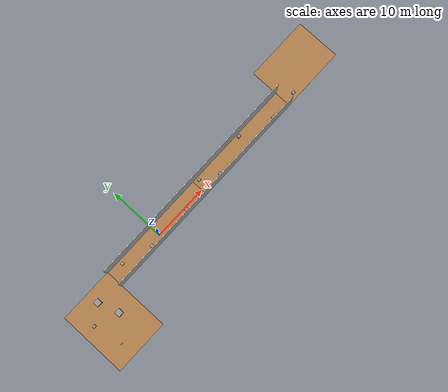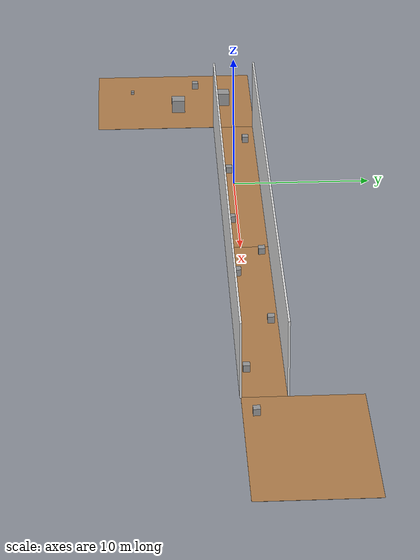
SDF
<sdf version="1.7">
 <world name="default">
  <light name="sun" type="directional">
   <pose>0 0 10 0 -0 0</pose>
   <diffuse>0.8 0.8 0.8 1</diffuse>
   <specular>0.2 0.2 0.2 1</specular>
   <attenuation>
    <range>1000</range>
    <constant>0.9</constant>
    <linear>0.01</linear>
    <quadratic>0.001</quadratic>
   </attenuation>
   <direction>-0.5 0.1 -0.9</direction>
   <spot><inner_angle>0</inner_angle><outer_angle>0</outer_angle><falloff>0</falloff></spot>
  </light>
  <gravity>0 0 -9.8</gravity>
  <magnetic_field>6e-06 2.3e-05 -4.2e-05</magnetic_field>
  <atmosphere type="adiabatic"/>
  <physics type="ode">
   <max_step_size>0.001</max_step_size>
   <real_time_factor>1</real_time_factor>
   <real_time_update_rate>1000</real_time_update_rate>
  </physics>
  <scene><ambient>0.4 0.4 0.4 1</ambient><background>0.7 0.7 0.7 1</background><shadows>1</shadows></scene>
  <audio><device>default</device></audio>
  <spherical_coordinates>
   <surface_model>EARTH_WGS84</surface_model>
   <latitude_deg>0</latitude_deg>
   <longitude_deg>0</longitude_deg>
   <elevation>0</elevation>
   <heading_deg>0</heading_deg>
  </spherical_coordinates>
  <model name="hallway_floor1">
   <link name="link">
    <pose>0 0.307034 0.005 0 -0 0</pose>
    <inertial>
     <mass>299.29</mass>
     <inertia><ixx>223.195</ixx><ixy>0</ixy><ixz>0</ixz><iyy>9986.2</iyy><iyz>0</iyz><izz>10209.4</izz></inertia>
    </inertial>
    <visual name="visual">
     <geometry><box><size>20.0099 2.99147 0.01</size></box></geometry>
     <material>
      <script><uri>file://media/materials/scripts/gazebo.material</uri><name>Gazebo/Wood</name></script>
      <shader type="pixel"><normal_map>__default__</normal_map></shader>
      <ambient>1 1 1 1</ambient>
      <diffuse>0.53 0.43 0.29 1</diffuse>
      <specular>0.2 0.2 0.2 1</specular>
      <emissive>0 0 0 1</emissive>
     </material>
    </visual>
    <collision name="collision">
     <geometry><box><size>20.0099 2.99147 0.01</size></box></geometry>
     <surface>
      <friction>
       <ode><mu>1</mu><mu2>1</mu2><fdir1>0 0 0</fdir1><slip1>0</slip1><slip2>0</slip2></ode>
       <torsional>
        <coefficient>1</coefficient>
        <patch_radius>0</patch_radius>
        <surface_radius>0.05</surface_radius>
        <use_patch_radius>0</use_patch_radius>
        <ode><slip>0</slip></ode>
       </torsional>
      </friction>
      <bounce><restitution_coefficient>0</restitution_coefficient><threshold>1e+06</threshold></bounce>
      <contact>
       <collide_without_contact>0</collide_without_contact>
       <collide_without_contact_bitmask>1</collide_without_contact_bitmask>
       <collide_bitmask>1</collide_bitmask>
       <ode>
        <soft_cfm>0</soft_cfm>
        <soft_erp>0.2</soft_erp>
        <kp>100000</kp>
        <kd>1</kd>
        <max_vel>1</max_vel>
        <min_depth>0.001</min_depth>
       </ode>
       <bullet>
        <split_impulse>1</split_impulse>
        <split_impulse_penetration_threshold>-0.01</split_impulse_penetration_threshold>
        <soft_cfm>0</soft_cfm>
        <soft_erp>0.2</soft_erp>
        <kp>100000</kp>
        <kd>1</kd>
       </bullet>
      </contact>
     </surface>
    </collision>
   </link>
   <static>1</static>
   <pose>-0.007919 0.198623 0 0 -0 0</pose>
  </model>
  <model name="hallway_floor2">
   <link name="link">
    <pose>2.60113 -4.27684 0.005 0 -0 0</pose>
    <inertial>
     <mass>597.527</mass>
     <inertia><ixx>7296.57</ixx><ixy>0</ixy><ixz>0</ixz><iyy>4845.69</iyy><iyz>0</iyz><izz>12142.2</izz></inertia>
    </inertial>
    <visual name="visual">
     <geometry><box><size>9.86483 12.1052 0.01</size></box></geometry>
     <material>
      <script><uri>file://media/materials/scripts/gazebo.material</uri><name>Gazebo/Wood</name></script>
      <shader type="pixel"><normal_map>__default__</normal_map></shader>
      <ambient>1 1 1 1</ambient>
      <diffuse>0.53 0.43 0.29 1</diffuse>
      <specular>0.2 0.2 0.2 1</specular>
      <emissive>0 0 0 1</emissive>
     </material>
    </visual>
    <collision name="collision">
     <geometry><box><size>9.86483 12.1052 0.01</size></box></geometry>
     <surface>
      <friction>
       <ode><mu>1</mu><mu2>1</mu2><fdir1>0 0 0</fdir1><slip1>0</slip1><slip2>0</slip2></ode>
       <torsional>
        <coefficient>1</coefficient>
        <patch_radius>0</patch_radius>
        <surface_radius>0.05</surface_radius>
        <use_patch_radius>0</use_patch_radius>
        <ode><slip>0</slip></ode>
       </torsional>
      </friction>
      <bounce><restitution_coefficient>0</restitution_coefficient><threshold>1e+06</threshold></bounce>
      <contact>
       <collide_without_contact>0</collide_without_contact>
       <collide_without_contact_bitmask>1</collide_without_contact_bitmask>
       <collide_bitmask>1</collide_bitmask>
       <ode>
        <soft_cfm>0</soft_cfm>
        <soft_erp>0.2</soft_erp>
        <kp>100000</kp>
        <kd>1</kd>
        <max_vel>1</max_vel>
        <min_depth>0.001</min_depth>
       </ode>
       <bullet>
        <split_impulse>1</split_impulse>
        <split_impulse_penetration_threshold>-0.01</split_impulse_penetration_threshold>
        <soft_cfm>0</soft_cfm>
        <soft_erp>0.2</soft_erp>
        <kp>100000</kp>
        <kd>1</kd>
       </bullet>
      </contact>
     </surface>
    </collision>
   </link>
   <static>1</static>
   <pose>-17.4521 0.272469 0 0 -0 0</pose>
  </model>
  <model name="hallway_floor1_0">
   <link name="link">
    <pose>0 0.307034 0.005 0 -0 0</pose>
    <inertial>
     <mass>299.29</mass>
     <inertia><ixx>223.195</ixx><ixy>0</ixy><ixz>0</ixz><iyy>9986.2</iyy><iyz>0</iyz><izz>10209.4</izz></inertia>
    </inertial>
    <visual name="visual">
     <geometry><box><size>20.0099 2.99147 0.01</size></box></geometry>
     <material>
      <script><uri>file://media/materials/scripts/gazebo.material</uri><name>Gazebo/Wood</name></script>
      <shader type="pixel"><normal_map>__default__</normal_map></shader>
      <ambient>1 1 1 1</ambient>
      <diffuse>0.53 0.43 0.29 1</diffuse>
      <specular>0.2 0.2 0.2 1</specular>
      <emissive>0 0 0 1</emissive>
     </material>
    </visual>
    <collision name="collision">
     <geometry><box><size>20.0099 2.99147 0.01</size></box></geometry>
     <surface>
      <friction>
       <ode><mu>1</mu><mu2>1</mu2><fdir1>0 0 0</fdir1><slip1>0</slip1><slip2>0</slip2></ode>
       <torsional>
        <coefficient>1</coefficient>
        <patch_radius>0</patch_radius>
        <surface_radius>0.05</surface_radius>
        <use_patch_radius>0</use_patch_radius>
        <ode><slip>0</slip></ode>
       </torsional>
      </friction>
      <bounce><restitution_coefficient>0</restitution_coefficient><threshold>1e+06</threshold></bounce>
      <contact>
       <collide_without_contact>0</collide_without_contact>
       <collide_without_contact_bitmask>1</collide_without_contact_bitmask>
       <collide_bitmask>1</collide_bitmask>
       <ode>
        <soft_cfm>0</soft_cfm>
        <soft_erp>0.2</soft_erp>
        <kp>100000</kp>
        <kd>1</kd>
        <max_vel>1</max_vel>
        <min_depth>0.001</min_depth>
       </ode>
       <bullet>
        <split_impulse>1</split_impulse>
        <split_impulse_penetration_threshold>-0.01</split_impulse_penetration_threshold>
        <soft_cfm>0</soft_cfm>
        <soft_erp>0.2</soft_erp>
        <kp>100000</kp>
        <kd>1</kd>
       </bullet>
      </contact>
     </surface>
    </collision>
   </link>
   <static>1</static>
   <pose>19.9953 0.195223 -0 0 -0 0</pose>
  </model>
  <model name="hallway_floor3">
   <link name="link">
    <pose>3.50763 -6.3886 0.005 0 0 -1.56673</pose>
    <inertial>
     <mass>454.853</mass>
     <inertia><ixx>5060.24</ixx><ixy>0</ixy><ixz>0</ixz><iyy>2346.18</iyy><iyz>0</iyz><izz>7406.4</izz></inertia>
    </inertial>
    <visual name="visual">
     <geometry><box><size>7.86747 11.5542 0.01</size></box></geometry>
     <material>
      <script><uri>file://media/materials/scripts/gazebo.material</uri><name>Gazebo/Wood</name></script>
      <shader type="pixel"><normal_map>__default__</normal_map></shader>
      <ambient>1 1 1 1</ambient>
      <diffuse>0.53 0.43 0.29 1</diffuse>
      <specular>0.2 0.2 0.2 1</specular>
      <emissive>0 0 0 1</emissive>
     </material>
    </visual>
    <collision name="collision">
     <geometry><box><size>7.86747 11.5542 0.01</size></box></geometry>
     <surface>
      <friction>
       <ode><mu>1</mu><mu2>1</mu2><fdir1>0 0 0</fdir1><slip1>0</slip1><slip2>0</slip2></ode>
       <torsional>
        <coefficient>1</coefficient>
        <patch_radius>0</patch_radius>
        <surface_radius>0.05</surface_radius>
        <use_patch_radius>0</use_patch_radius>
        <ode><slip>0</slip></ode>
       </torsional>
      </friction>
      <bounce><restitution_coefficient>0</restitution_coefficient><threshold>1e+06</threshold></bounce>
      <contact>
       <collide_without_contact>0</collide_without_contact>
       <collide_without_contact_bitmask>1</collide_without_contact_bitmask>
       <collide_bitmask>1</collide_bitmask>
       <ode>
        <soft_cfm>0</soft_cfm>
        <soft_erp>0.2</soft_erp>
        <kp>100000</kp>
        <kd>1</kd>
        <max_vel>1</max_vel>
        <min_depth>0.001</min_depth>
       </ode>
       <bullet>
        <split_impulse>1</split_impulse>
        <split_impulse_penetration_threshold>-0.01</split_impulse_penetration_threshold>
        <soft_cfm>0</soft_cfm>
        <soft_erp>0.2</soft_erp>
        <kp>100000</kp>
        <kd>1</kd>
       </bullet>
      </contact>
     </surface>
    </collision>
   </link>
   <static>1</static>
   <pose>32.2582 9.35121 0 0 -0 0</pose>
  </model>
  <model name="hallway_wall1_0">
   <link name="link">
    <inertial>
     <mass>27.1022</mass>
     <inertia><ixx>3689.09</ixx><ixy>0</ixy><ixz>0</ixz><iyy>66.1952</iyy><iyz>0</iyz><izz>3622.97</izz></inertia>
    </inertial>
    <pose>17.9224 1.25628 2.21049 0 -0 1.57199</pose>
    <visual name="visual">
     <geometry><box><size>0.125975 40.0515 5.41233</size></box></geometry>
     <material>
      <script><name>Gazebo/White</name><uri>file://media/materials/scripts/gazebo.material</uri></script>
      <shader type="pixel"><normal_map>__default__</normal_map></shader>
      <ambient>1 1 1 1</ambient>
      <diffuse>1 1 1 1</diffuse>
      <specular>0 0 0 1</specular>
      <emissive>0 0 0 1</emissive>
     </material>
    </visual>
    <collision name="collision">
     <geometry><box><size>0.125975 40.0515 5.41233</size></box></geometry>
     <surface>
      <friction>
       <ode><mu>1</mu><mu2>1</mu2><fdir1>0 0 0</fdir1><slip1>0</slip1><slip2>0</slip2></ode>
       <torsional>
        <coefficient>1</coefficient>
        <patch_radius>0</patch_radius>
        <surface_radius>0</surface_radius>
        <use_patch_radius>1</use_patch_radius>
        <ode><slip>0</slip></ode>
       </torsional>
      </friction>
      <bounce><restitution_coefficient>0</restitution_coefficient><threshold>1e+06</threshold></bounce>
      <contact>
       <collide_without_contact>0</collide_without_contact>
       <collide_without_contact_bitmask>1</collide_without_contact_bitmask>
       <collide_bitmask>1</collide_bitmask>
       <ode>
        <soft_cfm>0</soft_cfm>
        <soft_erp>0.2</soft_erp>
        <kp>1e+13</kp>
        <kd>1</kd>
        <max_vel>0.01</max_vel>
        <min_depth>0</min_depth>
       </ode>
       <bullet>
        <split_impulse>1</split_impulse>
        <split_impulse_penetration_threshold>-0.01</split_impulse_penetration_threshold>
        <soft_cfm>0</soft_cfm>
        <soft_erp>0.2</soft_erp>
        <kp>1e+13</kp>
        <kd>1</kd>
       </bullet>
      </contact>
     </surface>
    </collision>
   </link>
   <static>1</static>
   <pose>-7.98725 0.73588 0.473053 0 -0 0</pose>
  </model>
  <model name="hallway_wall1">
   <link name="link">
    <inertial>
     <mass>27.1022</mass>
     <inertia><ixx>3689.09</ixx><ixy>0</ixy><ixz>0</ixz><iyy>66.1952</iyy><iyz>0</iyz><izz>3622.97</izz></inertia>
    </inertial>
    <pose>17.9224 1.25628 2.21049 0 -0 1.57199</pose>
    <visual name="visual">
     <geometry><box><size>0.125975 40.0515 5.41233</size></box></geometry>
     <material>
      <script><name>Gazebo/White</name><uri>file://media/materials/scripts/gazebo.material</uri></script>
      <shader type="pixel"><normal_map>__default__</normal_map></shader>
      <ambient>1 1 1 1</ambient>
      <diffuse>1 1 1 1</diffuse>
      <specular>0 0 0 1</specular>
      <emissive>0 0 0 1</emissive>
     </material>
    </visual>
    <collision name="collision">
     <geometry><box><size>0.125975 40.0515 5.41233</size></box></geometry>
     <surface>
      <friction>
       <ode><mu>1</mu><mu2>1</mu2><fdir1>0 0 0</fdir1><slip1>0</slip1><slip2>0</slip2></ode>
       <torsional>
        <coefficient>1</coefficient>
        <patch_radius>0</patch_radius>
        <surface_radius>0</surface_radius>
        <use_patch_radius>1</use_patch_radius>
        <ode><slip>0</slip></ode>
       </torsional>
      </friction>
      <bounce><restitution_coefficient>0</restitution_coefficient><threshold>1e+06</threshold></bounce>
      <contact>
       <collide_without_contact>0</collide_without_contact>
       <collide_without_contact_bitmask>1</collide_without_contact_bitmask>
       <collide_bitmask>1</collide_bitmask>
       <ode>
        <soft_cfm>0</soft_cfm>
        <soft_erp>0.2</soft_erp>
        <kp>1e+13</kp>
        <kd>1</kd>
        <max_vel>0.01</max_vel>
        <min_depth>0</min_depth>
       </ode>
       <bullet>
        <split_impulse>1</split_impulse>
        <split_impulse_penetration_threshold>-0.01</split_impulse_penetration_threshold>
        <soft_cfm>0</soft_cfm>
        <soft_erp>0.2</soft_erp>
        <kp>1e+13</kp>
        <kd>1</kd>
       </bullet>
      </contact>
     </surface>
    </collision>
   </link>
   <static>1</static>
   <pose>-7.88655 -2.28681 0.489954 0 -0 0</pose>
  </model>
  <model name="unit_box">
   <pose>-14.4244 -0.19904 0.5 0 -0 0</pose>
   <link name="link">
    <inertial>
     <mass>1</mass>
     <inertia>
      <ixx>0.166667</ixx>
      <ixy>0</ixy>
      <ixz>0</ixz>
      <iyy>0.166667</iyy>
      <iyz>0</iyz>
      <izz>0.166667</izz>
     </inertia>
    </inertial>
    <collision name="collision"><geometry><box><size>1 1 1</size></box></geometry></collision>
    <visual name="visual">
     <geometry><box><size>1 1 1</size></box></geometry>
     <material>
      <script><name>Gazebo/Grey</name><uri>file://media/materials/scripts/gazebo.material</uri></script>
     </material>
    </visual>
   </link>
  </model>
  <model name="unit_box_0">
   <pose>-13.2699 -3.75669 0.495532 0 -0 0</pose>
   <link name="link">
    <inertial>
     <mass>1</mass>
     <inertia>
      <ixx>0.166667</ixx>
      <ixy>0</ixy>
      <ixz>0</ixz>
      <iyy>0.166667</iyy>
      <iyz>0</iyz>
      <izz>0.166667</izz>
     </inertia>
    </inertial>
    <collision name="collision"><geometry><box><size>1 1 1</size></box></geometry></collision>
    <visual name="visual">
     <geometry><box><size>1 1 1</size></box></geometry>
     <material>
      <script><name>Gazebo/Grey</name><uri>file://media/materials/scripts/gazebo.material</uri></script>
     </material>
    </visual>
   </link>
  </model>
  <model name="unit_box_1">
   <pose>-17.5067 -2.30243 0.243883 0 -0 0</pose>
   <link name="link">
    <inertial>
     <mass>1</mass>
     <inertia>
      <ixx>0.166667</ixx>
      <ixy>0</ixy>
      <ixz>0</ixz>
      <iyy>0.166667</iyy>
      <iyz>0</iyz>
      <izz>0.166667</izz>
     </inertia>
    </inertial>
    <collision name="collision">
     <geometry><box><size>0.521876 0.464653 0.473499</size></box></geometry>
    </collision>
    <visual name="visual">
     <geometry><box><size>0.521876 0.464653 0.473499</size></box></geometry>
     <material>
      <script><name>Gazebo/Grey</name><uri>file://media/materials/scripts/gazebo.material</uri></script>
     </material>
    </visual>
   </link>
  </model>
  <model name="unit_box_2">
   <pose>-16.5023 -7.34557 0.121796 0 -0 0</pose>
   <link name="link">
    <inertial>
     <mass>1</mass>
     <inertia>
      <ixx>0.166667</ixx>
      <ixy>0</ixy>
      <ixz>0</ixz>
      <iyy>0.166667</iyy>
      <iyz>0</iyz>
      <izz>0.166667</izz>
     </inertia>
    </inertial>
    <collision name="collision"><geometry><box><size>0.282237 0.23084 0.248828</size></box></geometry></collision>
    <visual name="visual">
     <geometry><box><size>0.282237 0.23084 0.248828</size></box></geometry>
     <material>
      <script><name>Gazebo/Grey</name><uri>file://media/materials/scripts/gazebo.material</uri></script>
     </material>
    </visual>
   </link>
  </model>
  <model name="unit_box_1_clone">
   <pose>-7.31102 1.21145 0.243883 0 -0 0</pose>
   <link name="link">
    <inertial>
     <mass>1</mass>
     <inertia>
      <ixx>0.166667</ixx>
      <ixy>0</ixy>
      <ixz>0</ixz>
      <iyy>0.166667</iyy>
      <iyz>0</iyz>
      <izz>0.166667</izz>
     </inertia>
    </inertial>
    <collision name="collision">
     <geometry><box><size>0.521877 0.464653 0.473499</size></box></geometry>
    </collision>
    <visual name="visual">
     <geometry><box><size>0.521877 0.464653 0.473499</size></box></geometry>
     <material>
      <script><name>Gazebo/Grey</name><uri>file://media/materials/scripts/gazebo.material</uri></script>
     </material>
    </visual>
   </link>
  </model>
  <model name="unit_box_1_clone_0">
   <pose>-2.04471 -0.27087 0.243883 0 -0 0</pose>
   <link name="link">
    <inertial>
     <mass>1</mass>
     <inertia>
      <ixx>0.166667</ixx>
      <ixy>0</ixy>
      <ixz>0</ixz>
      <iyy>0.166667</iyy>
      <iyz>0</iyz>
      <izz>0.166667</izz>
     </inertia>
    </inertial>
    <collision name="collision">
     <geometry><box><size>0.521877 0.464653 0.473499</size></box></geometry>
    </collision>
    <visual name="visual">
     <geometry><box><size>0.521877 0.464653 0.473499</size></box></geometry>
     <material>
      <script><name>Gazebo/Grey</name><uri>file://media/materials/scripts/gazebo.material</uri></script>
     </material>
    </visual>
   </link>
  </model>
  <model name="unit_box_1_clone_1">
   <pose>5.98205 -0.411797 0.243883 0 -0 0</pose>
   <link name="link">
    <inertial>
     <mass>1</mass>
     <inertia>
      <ixx>0.166667</ixx>
      <ixy>0</ixy>
      <ixz>0</ixz>
      <iyy>0.166667</iyy>
      <iyz>0</iyz>
      <izz>0.166667</izz>
     </inertia>
    </inertial>
    <collision name="collision">
     <geometry><box><size>0.521877 0.464653 0.473499</size></box></geometry>
    </collision>
    <visual name="visual">
     <geometry><box><size>0.521877 0.464653 0.473499</size></box></geometry>
     <material>
      <script><name>Gazebo/Grey</name><uri>file://media/materials/scripts/gazebo.material</uri></script>
     </material>
    </visual>
   </link>
  </model>
  <model name="unit_box_1_clone_2">
   <pose>10.8796 1.42617 0.243883 0 -0 0</pose>
   <link name="link">
    <inertial>
     <mass>1</mass>
     <inertia>
      <ixx>0.166667</ixx>
      <ixy>0</ixy>
      <ixz>0</ixz>
      <iyy>0.166667</iyy>
      <iyz>0</iyz>
      <izz>0.166667</izz>
     </inertia>
    </inertial>
    <collision name="collision">
     <geometry><box><size>0.521877 0.464653 0.473499</size></box></geometry>
    </collision>
    <visual name="visual">
     <geometry><box><size>0.521877 0.464653 0.473499</size></box></geometry>
     <material>
      <script><name>Gazebo/Grey</name><uri>file://media/materials/scripts/gazebo.material</uri></script>
     </material>
    </visual>
   </link>
  </model>
  <model name="unit_box_1_clone_3">
   <pose>13.9256 -0.403898 0.243883 0 -0 0</pose>
   <link name="link">
    <inertial>
     <mass>1</mass>
     <inertia>
      <ixx>0.166667</ixx>
      <ixy>0</ixy>
      <ixz>0</ixz>
      <iyy>0.166667</iyy>
      <iyz>0</iyz>
      <izz>0.166667</izz>
     </inertia>
    </inertial>
    <collision name="collision">
     <geometry><box><size>0.521877 0.464653 0.473499</size></box></geometry>
    </collision>
    <visual name="visual">
     <geometry><box><size>0.521877 0.464653 0.473499</size></box></geometry>
     <material>
      <script><name>Gazebo/Grey</name><uri>file://media/materials/scripts/gazebo.material</uri></script>
     </material>
    </visual>
   </link>
  </model>
  <model name="unit_box_1_clone_4">
   <pose>20.5188 1.49992 0.243883 0 -0 0</pose>
   <link name="link">
    <inertial>
     <mass>1</mass>
     <inertia>
      <ixx>0.166667</ixx>
      <ixy>0</ixy>
      <ixz>0</ixz>
      <iyy>0.166667</iyy>
      <iyz>0</iyz>
      <izz>0.166667</izz>
     </inertia>
    </inertial>
    <collision name="collision">
     <geometry><box><size>0.521877 0.464653 0.473499</size></box></geometry>
    </collision>
    <visual name="visual">
     <geometry><box><size>0.521877 0.464653 0.473499</size></box></geometry>
     <material>
      <script><name>Gazebo/Grey</name><uri>file://media/materials/scripts/gazebo.material</uri></script>
     </material>
    </visual>
   </link>
  </model>
  <model name="unit_box_1_clone_5">
   <pose>26.7033 -0.47035 0.243883 0 -0 0</pose>
   <link name="link">
    <inertial>
     <mass>1</mass>
     <inertia>
      <ixx>0.166667</ixx>
      <ixy>0</ixy>
      <ixz>0</ixz>
      <iyy>0.166667</iyy>
      <iyz>0</iyz>
      <izz>0.166667</izz>
     </inertia>
    </inertial>
    <collision name="collision">
     <geometry><box><size>0.521877 0.464653 0.473499</size></box></geometry>
    </collision>
    <visual name="visual">
     <geometry><box><size>0.521877 0.464653 0.473499</size></box></geometry>
     <material>
      <script><name>Gazebo/Grey</name><uri>file://media/materials/scripts/gazebo.material</uri></script>
     </material>
    </visual>
   </link>
  </model>
  <model name="unit_box_1_clone_6">
   <pose>31.9495 -0.106746 0.243883 0 -0 0</pose>
   <link name="link">
    <inertial>
     <mass>1</mass>
     <inertia>
      <ixx>0.166667</ixx>
      <ixy>0</ixy>
      <ixz>0</ixz>
      <iyy>0.166667</iyy>
      <iyz>0</iyz>
      <izz>0.166667</izz>
     </inertia>
    </inertial>
    <collision name="collision">
     <geometry><box><size>0.521877 0.464653 0.473499</size></box></geometry>
    </collision>
    <visual name="visual">
     <geometry><box><size>0.521877 0.464653 0.473499</size></box></geometry>
     <material>
      <script><name>Gazebo/Grey</name><uri>file://media/materials/scripts/gazebo.material</uri></script>
     </material>
    </visual>
   </link>
  </model>
 </world>
</sdf>
